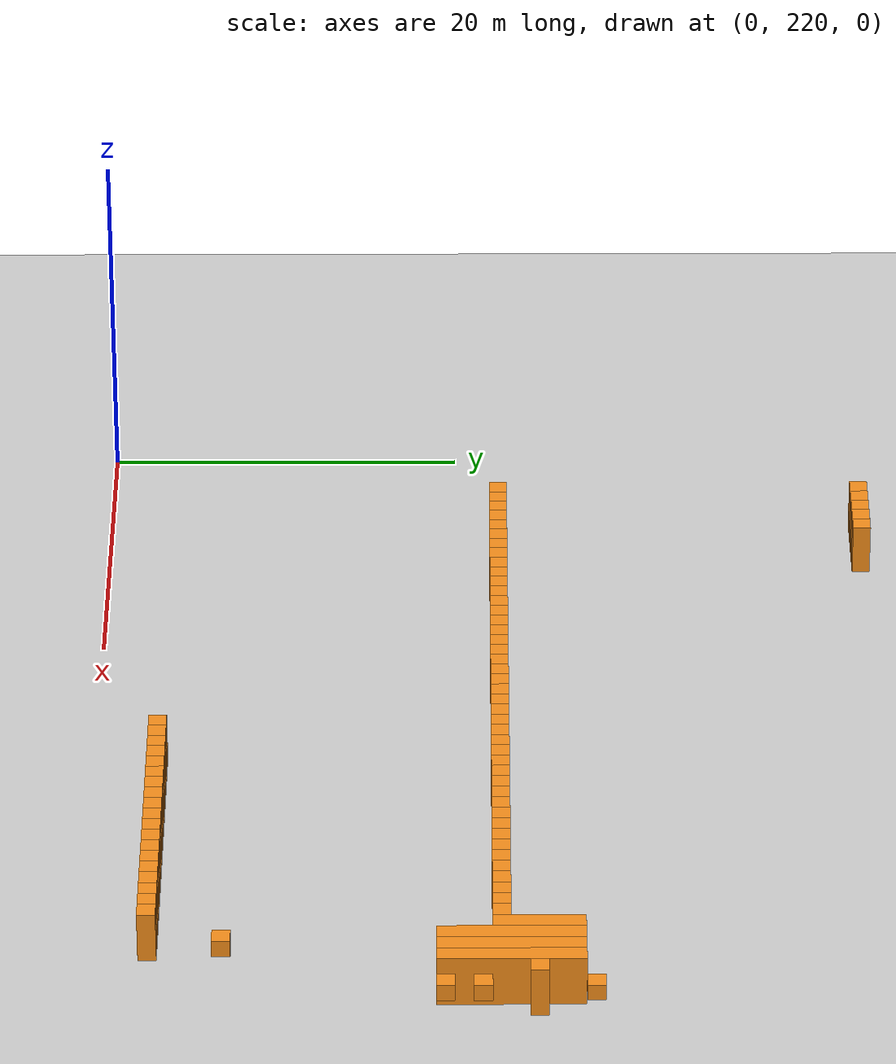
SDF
<sdf version="1.6">
 <world name="default">
  <include><uri>model://ground_plane</uri></include>
  <model name="unit_box_014">
   <pose>7.50   242.50     1.50 0 0 0</pose>
   <static>1</static>
   <link name="link">
    <inertial>
     <mass>5000</mass>
     <inertia><ixx>200</ixx><ixy>0</ixy><ixz>0</ixz><iyy>200</iyy><iyz>0</iyz><izz>200</izz></inertia>
    </inertial>
    <collision name="collision"><geometry><box><size>1 1 3</size></box></geometry></collision>
    <visual name="visual">
     <geometry><box><size>1 1 3</size></box></geometry>
     <material>
      <script><name>Gazebo/Orange</name><uri>file://media/materials/scripts/gazebo.material</uri></script>
     </material>
    </visual>
   </link>
  </model>
  <model name="unit_box_015">
   <pose>7.50   263.50     1.50 0 0 0</pose>
   <static>1</static>
   <link name="link">
    <inertial>
     <mass>5000</mass>
     <inertia><ixx>200</ixx><ixy>0</ixy><ixz>0</ixz><iyy>200</iyy><iyz>0</iyz><izz>200</izz></inertia>
    </inertial>
    <collision name="collision"><geometry><box><size>1 1 3</size></box></geometry></collision>
    <visual name="visual">
     <geometry><box><size>1 1 3</size></box></geometry>
     <material>
      <script><name>Gazebo/Orange</name><uri>file://media/materials/scripts/gazebo.material</uri></script>
     </material>
    </visual>
   </link>
  </model>
  <model name="unit_box_027">
   <pose>8.50   242.50     1.50 0 0 0</pose>
   <static>1</static>
   <link name="link">
    <inertial>
     <mass>5000</mass>
     <inertia><ixx>200</ixx><ixy>0</ixy><ixz>0</ixz><iyy>200</iyy><iyz>0</iyz><izz>200</izz></inertia>
    </inertial>
    <collision name="collision"><geometry><box><size>1 1 3</size></box></geometry></collision>
    <visual name="visual">
     <geometry><box><size>1 1 3</size></box></geometry>
     <material>
      <script><name>Gazebo/Orange</name><uri>file://media/materials/scripts/gazebo.material</uri></script>
     </material>
    </visual>
   </link>
  </model>
  <model name="unit_box_028">
   <pose>8.50   263.50     1.50 0 0 0</pose>
   <static>1</static>
   <link name="link">
    <inertial>
     <mass>5000</mass>
     <inertia><ixx>200</ixx><ixy>0</ixy><ixz>0</ixz><iyy>200</iyy><iyz>0</iyz><izz>200</izz></inertia>
    </inertial>
    <collision name="collision"><geometry><box><size>1 1 3</size></box></geometry></collision>
    <visual name="visual">
     <geometry><box><size>1 1 3</size></box></geometry>
     <material>
      <script><name>Gazebo/Orange</name><uri>file://media/materials/scripts/gazebo.material</uri></script>
     </material>
    </visual>
   </link>
  </model>
  <model name="unit_box_040">
   <pose>9.50   242.50     1.50 0 0 0</pose>
   <static>1</static>
   <link name="link">
    <inertial>
     <mass>5000</mass>
     <inertia><ixx>200</ixx><ixy>0</ixy><ixz>0</ixz><iyy>200</iyy><iyz>0</iyz><izz>200</izz></inertia>
    </inertial>
    <collision name="collision"><geometry><box><size>1 1 3</size></box></geometry></collision>
    <visual name="visual">
     <geometry><box><size>1 1 3</size></box></geometry>
     <material>
      <script><name>Gazebo/Orange</name><uri>file://media/materials/scripts/gazebo.material</uri></script>
     </material>
    </visual>
   </link>
  </model>
  <model name="unit_box_041">
   <pose>9.50   263.50     1.50 0 0 0</pose>
   <static>1</static>
   <link name="link">
    <inertial>
     <mass>5000</mass>
     <inertia><ixx>200</ixx><ixy>0</ixy><ixz>0</ixz><iyy>200</iyy><iyz>0</iyz><izz>200</izz></inertia>
    </inertial>
    <collision name="collision"><geometry><box><size>1 1 3</size></box></geometry></collision>
    <visual name="visual">
     <geometry><box><size>1 1 3</size></box></geometry>
     <material>
      <script><name>Gazebo/Orange</name><uri>file://media/materials/scripts/gazebo.material</uri></script>
     </material>
    </visual>
   </link>
  </model>
  <model name="unit_box_053">
   <pose>10.50   242.50     1.50 0 0 0</pose>
   <static>1</static>
   <link name="link">
    <inertial>
     <mass>5000</mass>
     <inertia><ixx>200</ixx><ixy>0</ixy><ixz>0</ixz><iyy>200</iyy><iyz>0</iyz><izz>200</izz></inertia>
    </inertial>
    <collision name="collision"><geometry><box><size>1 1 3</size></box></geometry></collision>
    <visual name="visual">
     <geometry><box><size>1 1 3</size></box></geometry>
     <material>
      <script><name>Gazebo/Orange</name><uri>file://media/materials/scripts/gazebo.material</uri></script>
     </material>
    </visual>
   </link>
  </model>
  <model name="unit_box_054">
   <pose>10.50   263.50     1.50 0 0 0</pose>
   <static>1</static>
   <link name="link">
    <inertial>
     <mass>5000</mass>
     <inertia><ixx>200</ixx><ixy>0</ixy><ixz>0</ixz><iyy>200</iyy><iyz>0</iyz><izz>200</izz></inertia>
    </inertial>
    <collision name="collision"><geometry><box><size>1 1 3</size></box></geometry></collision>
    <visual name="visual">
     <geometry><box><size>1 1 3</size></box></geometry>
     <material>
      <script><name>Gazebo/Orange</name><uri>file://media/materials/scripts/gazebo.material</uri></script>
     </material>
    </visual>
   </link>
  </model>
  <model name="unit_box_066">
   <pose>11.50   242.50     1.50 0 0 0</pose>
   <static>1</static>
   <link name="link">
    <inertial>
     <mass>5000</mass>
     <inertia><ixx>200</ixx><ixy>0</ixy><ixz>0</ixz><iyy>200</iyy><iyz>0</iyz><izz>200</izz></inertia>
    </inertial>
    <collision name="collision"><geometry><box><size>1 1 3</size></box></geometry></collision>
    <visual name="visual">
     <geometry><box><size>1 1 3</size></box></geometry>
     <material>
      <script><name>Gazebo/Orange</name><uri>file://media/materials/scripts/gazebo.material</uri></script>
     </material>
    </visual>
   </link>
  </model>
  <model name="unit_box_067">
   <pose>11.50   263.50     1.50 0 0 0</pose>
   <static>1</static>
   <link name="link">
    <inertial>
     <mass>5000</mass>
     <inertia><ixx>200</ixx><ixy>0</ixy><ixz>0</ixz><iyy>200</iyy><iyz>0</iyz><izz>200</izz></inertia>
    </inertial>
    <collision name="collision"><geometry><box><size>1 1 3</size></box></geometry></collision>
    <visual name="visual">
     <geometry><box><size>1 1 3</size></box></geometry>
     <material>
      <script><name>Gazebo/Orange</name><uri>file://media/materials/scripts/gazebo.material</uri></script>
     </material>
    </visual>
   </link>
  </model>
  <model name="unit_box_079">
   <pose>12.50   242.50     1.50 0 0 0</pose>
   <static>1</static>
   <link name="link">
    <inertial>
     <mass>5000</mass>
     <inertia><ixx>200</ixx><ixy>0</ixy><ixz>0</ixz><iyy>200</iyy><iyz>0</iyz><izz>200</izz></inertia>
    </inertial>
    <collision name="collision"><geometry><box><size>1 1 3</size></box></geometry></collision>
    <visual name="visual">
     <geometry><box><size>1 1 3</size></box></geometry>
     <material>
      <script><name>Gazebo/Orange</name><uri>file://media/materials/scripts/gazebo.material</uri></script>
     </material>
    </visual>
   </link>
  </model>
  <model name="unit_box_092">
   <pose>13.50   242.50     1.50 0 0 0</pose>
   <static>1</static>
   <link name="link">
    <inertial>
     <mass>5000</mass>
     <inertia><ixx>200</ixx><ixy>0</ixy><ixz>0</ixz><iyy>200</iyy><iyz>0</iyz><izz>200</izz></inertia>
    </inertial>
    <collision name="collision"><geometry><box><size>1 1 3</size></box></geometry></collision>
    <visual name="visual">
     <geometry><box><size>1 1 3</size></box></geometry>
     <material>
      <script><name>Gazebo/Orange</name><uri>file://media/materials/scripts/gazebo.material</uri></script>
     </material>
    </visual>
   </link>
  </model>
  <model name="unit_box_105">
   <pose>14.50   242.50     1.50 0 0 0</pose>
   <static>1</static>
   <link name="link">
    <inertial>
     <mass>5000</mass>
     <inertia><ixx>200</ixx><ixy>0</ixy><ixz>0</ixz><iyy>200</iyy><iyz>0</iyz><izz>200</izz></inertia>
    </inertial>
    <collision name="collision"><geometry><box><size>1 1 3</size></box></geometry></collision>
    <visual name="visual">
     <geometry><box><size>1 1 3</size></box></geometry>
     <material>
      <script><name>Gazebo/Orange</name><uri>file://media/materials/scripts/gazebo.material</uri></script>
     </material>
    </visual>
   </link>
  </model>
  <model name="unit_box_118">
   <pose>15.50   242.50     1.50 0 0 0</pose>
   <static>1</static>
   <link name="link">
    <inertial>
     <mass>5000</mass>
     <inertia><ixx>200</ixx><ixy>0</ixy><ixz>0</ixz><iyy>200</iyy><iyz>0</iyz><izz>200</izz></inertia>
    </inertial>
    <collision name="collision"><geometry><box><size>1 1 3</size></box></geometry></collision>
    <visual name="visual">
     <geometry><box><size>1 1 3</size></box></geometry>
     <material>
      <script><name>Gazebo/Orange</name><uri>file://media/materials/scripts/gazebo.material</uri></script>
     </material>
    </visual>
   </link>
  </model>
  <model name="unit_box_131">
   <pose>16.50   242.50     1.50 0 0 0</pose>
   <static>1</static>
   <link name="link">
    <inertial>
     <mass>5000</mass>
     <inertia><ixx>200</ixx><ixy>0</ixy><ixz>0</ixz><iyy>200</iyy><iyz>0</iyz><izz>200</izz></inertia>
    </inertial>
    <collision name="collision"><geometry><box><size>1 1 3</size></box></geometry></collision>
    <visual name="visual">
     <geometry><box><size>1 1 3</size></box></geometry>
     <material>
      <script><name>Gazebo/Orange</name><uri>file://media/materials/scripts/gazebo.material</uri></script>
     </material>
    </visual>
   </link>
  </model>
  <model name="unit_box_144">
   <pose>17.50   242.50     1.50 0 0 0</pose>
   <static>1</static>
   <link name="link">
    <inertial>
     <mass>5000</mass>
     <inertia><ixx>200</ixx><ixy>0</ixy><ixz>0</ixz><iyy>200</iyy><iyz>0</iyz><izz>200</izz></inertia>
    </inertial>
    <collision name="collision"><geometry><box><size>1 1 3</size></box></geometry></collision>
    <visual name="visual">
     <geometry><box><size>1 1 3</size></box></geometry>
     <material>
      <script><name>Gazebo/Orange</name><uri>file://media/materials/scripts/gazebo.material</uri></script>
     </material>
    </visual>
   </link>
  </model>
  <model name="unit_box_157">
   <pose>18.50   242.50     1.50 0 0 0</pose>
   <static>1</static>
   <link name="link">
    <inertial>
     <mass>5000</mass>
     <inertia><ixx>200</ixx><ixy>0</ixy><ixz>0</ixz><iyy>200</iyy><iyz>0</iyz><izz>200</izz></inertia>
    </inertial>
    <collision name="collision"><geometry><box><size>1 1 3</size></box></geometry></collision>
    <visual name="visual">
     <geometry><box><size>1 1 3</size></box></geometry>
     <material>
      <script><name>Gazebo/Orange</name><uri>file://media/materials/scripts/gazebo.material</uri></script>
     </material>
    </visual>
   </link>
  </model>
  <model name="unit_box_170">
   <pose>19.50   242.50     1.50 0 0 0</pose>
   <static>1</static>
   <link name="link">
    <inertial>
     <mass>5000</mass>
     <inertia><ixx>200</ixx><ixy>0</ixy><ixz>0</ixz><iyy>200</iyy><iyz>0</iyz><izz>200</izz></inertia>
    </inertial>
    <collision name="collision"><geometry><box><size>1 1 3</size></box></geometry></collision>
    <visual name="visual">
     <geometry><box><size>1 1 3</size></box></geometry>
     <material>
      <script><name>Gazebo/Orange</name><uri>file://media/materials/scripts/gazebo.material</uri></script>
     </material>
    </visual>
   </link>
  </model>
  <model name="unit_box_183">
   <pose>20.50   242.50     1.50 0 0 0</pose>
   <static>1</static>
   <link name="link">
    <inertial>
     <mass>5000</mass>
     <inertia><ixx>200</ixx><ixy>0</ixy><ixz>0</ixz><iyy>200</iyy><iyz>0</iyz><izz>200</izz></inertia>
    </inertial>
    <collision name="collision"><geometry><box><size>1 1 3</size></box></geometry></collision>
    <visual name="visual">
     <geometry><box><size>1 1 3</size></box></geometry>
     <material>
      <script><name>Gazebo/Orange</name><uri>file://media/materials/scripts/gazebo.material</uri></script>
     </material>
    </visual>
   </link>
  </model>
  <model name="unit_box_196">
   <pose>21.50   242.50     1.50 0 0 0</pose>
   <static>1</static>
   <link name="link">
    <inertial>
     <mass>5000</mass>
     <inertia><ixx>200</ixx><ixy>0</ixy><ixz>0</ixz><iyy>200</iyy><iyz>0</iyz><izz>200</izz></inertia>
    </inertial>
    <collision name="collision"><geometry><box><size>1 1 3</size></box></geometry></collision>
    <visual name="visual">
     <geometry><box><size>1 1 3</size></box></geometry>
     <material>
      <script><name>Gazebo/Orange</name><uri>file://media/materials/scripts/gazebo.material</uri></script>
     </material>
    </visual>
   </link>
  </model>
  <model name="unit_box_209">
   <pose>22.50   242.50     1.50 0 0 0</pose>
   <static>1</static>
   <link name="link">
    <inertial>
     <mass>5000</mass>
     <inertia><ixx>200</ixx><ixy>0</ixy><ixz>0</ixz><iyy>200</iyy><iyz>0</iyz><izz>200</izz></inertia>
    </inertial>
    <collision name="collision"><geometry><box><size>1 1 3</size></box></geometry></collision>
    <visual name="visual">
     <geometry><box><size>1 1 3</size></box></geometry>
     <material>
      <script><name>Gazebo/Orange</name><uri>file://media/materials/scripts/gazebo.material</uri></script>
     </material>
    </visual>
   </link>
  </model>
  <model name="unit_box_222">
   <pose>23.50   242.50     1.50 0 0 0</pose>
   <static>1</static>
   <link name="link">
    <inertial>
     <mass>5000</mass>
     <inertia><ixx>200</ixx><ixy>0</ixy><ixz>0</ixz><iyy>200</iyy><iyz>0</iyz><izz>200</izz></inertia>
    </inertial>
    <collision name="collision"><geometry><box><size>1 1 3</size></box></geometry></collision>
    <visual name="visual">
     <geometry><box><size>1 1 3</size></box></geometry>
     <material>
      <script><name>Gazebo/Orange</name><uri>file://media/materials/scripts/gazebo.material</uri></script>
     </material>
    </visual>
   </link>
  </model>
  <model name="unit_box_235">
   <pose>24.50   242.50     1.50 0 0 0</pose>
   <static>1</static>
   <link name="link">
    <inertial>
     <mass>5000</mass>
     <inertia><ixx>200</ixx><ixy>0</ixy><ixz>0</ixz><iyy>200</iyy><iyz>0</iyz><izz>200</izz></inertia>
    </inertial>
    <collision name="collision"><geometry><box><size>1 1 3</size></box></geometry></collision>
    <visual name="visual">
     <geometry><box><size>1 1 3</size></box></geometry>
     <material>
      <script><name>Gazebo/Orange</name><uri>file://media/materials/scripts/gazebo.material</uri></script>
     </material>
    </visual>
   </link>
  </model>
  <model name="unit_box_248">
   <pose>25.50   242.50     1.50 0 0 0</pose>
   <static>1</static>
   <link name="link">
    <inertial>
     <mass>5000</mass>
     <inertia><ixx>200</ixx><ixy>0</ixy><ixz>0</ixz><iyy>200</iyy><iyz>0</iyz><izz>200</izz></inertia>
    </inertial>
    <collision name="collision"><geometry><box><size>1 1 3</size></box></geometry></collision>
    <visual name="visual">
     <geometry><box><size>1 1 3</size></box></geometry>
     <material>
      <script><name>Gazebo/Orange</name><uri>file://media/materials/scripts/gazebo.material</uri></script>
     </material>
    </visual>
   </link>
  </model>
  <model name="unit_box_261">
   <pose>26.50   242.50     1.50 0 0 0</pose>
   <static>1</static>
   <link name="link">
    <inertial>
     <mass>5000</mass>
     <inertia><ixx>200</ixx><ixy>0</ixy><ixz>0</ixz><iyy>200</iyy><iyz>0</iyz><izz>200</izz></inertia>
    </inertial>
    <collision name="collision"><geometry><box><size>1 1 3</size></box></geometry></collision>
    <visual name="visual">
     <geometry><box><size>1 1 3</size></box></geometry>
     <material>
      <script><name>Gazebo/Orange</name><uri>file://media/materials/scripts/gazebo.material</uri></script>
     </material>
    </visual>
   </link>
  </model>
  <model name="unit_box_274">
   <pose>27.50   242.50     1.50 0 0 0</pose>
   <static>1</static>
   <link name="link">
    <inertial>
     <mass>5000</mass>
     <inertia><ixx>200</ixx><ixy>0</ixy><ixz>0</ixz><iyy>200</iyy><iyz>0</iyz><izz>200</izz></inertia>
    </inertial>
    <collision name="collision"><geometry><box><size>1 1 3</size></box></geometry></collision>
    <visual name="visual">
     <geometry><box><size>1 1 3</size></box></geometry>
     <material>
      <script><name>Gazebo/Orange</name><uri>file://media/materials/scripts/gazebo.material</uri></script>
     </material>
    </visual>
   </link>
  </model>
  <model name="unit_box_287">
   <pose>28.50   242.50     1.50 0 0 0</pose>
   <static>1</static>
   <link name="link">
    <inertial>
     <mass>5000</mass>
     <inertia><ixx>200</ixx><ixy>0</ixy><ixz>0</ixz><iyy>200</iyy><iyz>0</iyz><izz>200</izz></inertia>
    </inertial>
    <collision name="collision"><geometry><box><size>1 1 3</size></box></geometry></collision>
    <visual name="visual">
     <geometry><box><size>1 1 3</size></box></geometry>
     <material>
      <script><name>Gazebo/Orange</name><uri>file://media/materials/scripts/gazebo.material</uri></script>
     </material>
    </visual>
   </link>
  </model>
  <model name="unit_box_300">
   <pose>29.50   242.50     1.50 0 0 0</pose>
   <static>1</static>
   <link name="link">
    <inertial>
     <mass>5000</mass>
     <inertia><ixx>200</ixx><ixy>0</ixy><ixz>0</ixz><iyy>200</iyy><iyz>0</iyz><izz>200</izz></inertia>
    </inertial>
    <collision name="collision"><geometry><box><size>1 1 3</size></box></geometry></collision>
    <visual name="visual">
     <geometry><box><size>1 1 3</size></box></geometry>
     <material>
      <script><name>Gazebo/Orange</name><uri>file://media/materials/scripts/gazebo.material</uri></script>
     </material>
    </visual>
   </link>
  </model>
  <model name="unit_box_313">
   <pose>30.50   242.50     1.50 0 0 0</pose>
   <static>1</static>
   <link name="link">
    <inertial>
     <mass>5000</mass>
     <inertia><ixx>200</ixx><ixy>0</ixy><ixz>0</ixz><iyy>200</iyy><iyz>0</iyz><izz>200</izz></inertia>
    </inertial>
    <collision name="collision"><geometry><box><size>1 1 3</size></box></geometry></collision>
    <visual name="visual">
     <geometry><box><size>1 1 3</size></box></geometry>
     <material>
      <script><name>Gazebo/Orange</name><uri>file://media/materials/scripts/gazebo.material</uri></script>
     </material>
    </visual>
   </link>
  </model>
  <model name="unit_box_325">
   <pose>31.50   223.50     1.50 0 0 0</pose>
   <static>1</static>
   <link name="link">
    <inertial>
     <mass>5000</mass>
     <inertia><ixx>200</ixx><ixy>0</ixy><ixz>0</ixz><iyy>200</iyy><iyz>0</iyz><izz>200</izz></inertia>
    </inertial>
    <collision name="collision"><geometry><box><size>1 1 3</size></box></geometry></collision>
    <visual name="visual">
     <geometry><box><size>1 1 3</size></box></geometry>
     <material>
      <script><name>Gazebo/Orange</name><uri>file://media/materials/scripts/gazebo.material</uri></script>
     </material>
    </visual>
   </link>
  </model>
  <model name="unit_box_326">
   <pose>31.50   242.50     1.50 0 0 0</pose>
   <static>1</static>
   <link name="link">
    <inertial>
     <mass>5000</mass>
     <inertia><ixx>200</ixx><ixy>0</ixy><ixz>0</ixz><iyy>200</iyy><iyz>0</iyz><izz>200</izz></inertia>
    </inertial>
    <collision name="collision"><geometry><box><size>1 1 3</size></box></geometry></collision>
    <visual name="visual">
     <geometry><box><size>1 1 3</size></box></geometry>
     <material>
      <script><name>Gazebo/Orange</name><uri>file://media/materials/scripts/gazebo.material</uri></script>
     </material>
    </visual>
   </link>
  </model>
  <model name="unit_box_338">
   <pose>32.50   223.50     1.50 0 0 0</pose>
   <static>1</static>
   <link name="link">
    <inertial>
     <mass>5000</mass>
     <inertia><ixx>200</ixx><ixy>0</ixy><ixz>0</ixz><iyy>200</iyy><iyz>0</iyz><izz>200</izz></inertia>
    </inertial>
    <collision name="collision"><geometry><box><size>1 1 3</size></box></geometry></collision>
    <visual name="visual">
     <geometry><box><size>1 1 3</size></box></geometry>
     <material>
      <script><name>Gazebo/Orange</name><uri>file://media/materials/scripts/gazebo.material</uri></script>
     </material>
    </visual>
   </link>
  </model>
  <model name="unit_box_339">
   <pose>32.50   242.50     1.50 0 0 0</pose>
   <static>1</static>
   <link name="link">
    <inertial>
     <mass>5000</mass>
     <inertia><ixx>200</ixx><ixy>0</ixy><ixz>0</ixz><iyy>200</iyy><iyz>0</iyz><izz>200</izz></inertia>
    </inertial>
    <collision name="collision"><geometry><box><size>1 1 3</size></box></geometry></collision>
    <visual name="visual">
     <geometry><box><size>1 1 3</size></box></geometry>
     <material>
      <script><name>Gazebo/Orange</name><uri>file://media/materials/scripts/gazebo.material</uri></script>
     </material>
    </visual>
   </link>
  </model>
  <model name="unit_box_351">
   <pose>33.50   223.50     1.50 0 0 0</pose>
   <static>1</static>
   <link name="link">
    <inertial>
     <mass>5000</mass>
     <inertia><ixx>200</ixx><ixy>0</ixy><ixz>0</ixz><iyy>200</iyy><iyz>0</iyz><izz>200</izz></inertia>
    </inertial>
    <collision name="collision"><geometry><box><size>1 1 3</size></box></geometry></collision>
    <visual name="visual">
     <geometry><box><size>1 1 3</size></box></geometry>
     <material>
      <script><name>Gazebo/Orange</name><uri>file://media/materials/scripts/gazebo.material</uri></script>
     </material>
    </visual>
   </link>
  </model>
  <model name="unit_box_352">
   <pose>33.50   242.50     1.50 0 0 0</pose>
   <static>1</static>
   <link name="link">
    <inertial>
     <mass>5000</mass>
     <inertia><ixx>200</ixx><ixy>0</ixy><ixz>0</ixz><iyy>200</iyy><iyz>0</iyz><izz>200</izz></inertia>
    </inertial>
    <collision name="collision"><geometry><box><size>1 1 3</size></box></geometry></collision>
    <visual name="visual">
     <geometry><box><size>1 1 3</size></box></geometry>
     <material>
      <script><name>Gazebo/Orange</name><uri>file://media/materials/scripts/gazebo.material</uri></script>
     </material>
    </visual>
   </link>
  </model>
  <model name="unit_box_364">
   <pose>34.50   223.50     1.50 0 0 0</pose>
   <static>1</static>
   <link name="link">
    <inertial>
     <mass>5000</mass>
     <inertia><ixx>200</ixx><ixy>0</ixy><ixz>0</ixz><iyy>200</iyy><iyz>0</iyz><izz>200</izz></inertia>
    </inertial>
    <collision name="collision"><geometry><box><size>1 1 3</size></box></geometry></collision>
    <visual name="visual">
     <geometry><box><size>1 1 3</size></box></geometry>
     <material>
      <script><name>Gazebo/Orange</name><uri>file://media/materials/scripts/gazebo.material</uri></script>
     </material>
    </visual>
   </link>
  </model>
  <model name="unit_box_365">
   <pose>34.50   242.50     1.50 0 0 0</pose>
   <static>1</static>
   <link name="link">
    <inertial>
     <mass>5000</mass>
     <inertia><ixx>200</ixx><ixy>0</ixy><ixz>0</ixz><iyy>200</iyy><iyz>0</iyz><izz>200</izz></inertia>
    </inertial>
    <collision name="collision"><geometry><box><size>1 1 3</size></box></geometry></collision>
    <visual name="visual">
     <geometry><box><size>1 1 3</size></box></geometry>
     <material>
      <script><name>Gazebo/Orange</name><uri>file://media/materials/scripts/gazebo.material</uri></script>
     </material>
    </visual>
   </link>
  </model>
  <model name="unit_box_377">
   <pose>35.50   223.50     1.50 0 0 0</pose>
   <static>1</static>
   <link name="link">
    <inertial>
     <mass>5000</mass>
     <inertia><ixx>200</ixx><ixy>0</ixy><ixz>0</ixz><iyy>200</iyy><iyz>0</iyz><izz>200</izz></inertia>
    </inertial>
    <collision name="collision"><geometry><box><size>1 1 3</size></box></geometry></collision>
    <visual name="visual">
     <geometry><box><size>1 1 3</size></box></geometry>
     <material>
      <script><name>Gazebo/Orange</name><uri>file://media/materials/scripts/gazebo.material</uri></script>
     </material>
    </visual>
   </link>
  </model>
  <model name="unit_box_378">
   <pose>35.50   242.50     1.50 0 0 0</pose>
   <static>1</static>
   <link name="link">
    <inertial>
     <mass>5000</mass>
     <inertia><ixx>200</ixx><ixy>0</ixy><ixz>0</ixz><iyy>200</iyy><iyz>0</iyz><izz>200</izz></inertia>
    </inertial>
    <collision name="collision"><geometry><box><size>1 1 3</size></box></geometry></collision>
    <visual name="visual">
     <geometry><box><size>1 1 3</size></box></geometry>
     <material>
      <script><name>Gazebo/Orange</name><uri>file://media/materials/scripts/gazebo.material</uri></script>
     </material>
    </visual>
   </link>
  </model>
  <model name="unit_box_390">
   <pose>36.50   223.50     1.50 0 0 0</pose>
   <static>1</static>
   <link name="link">
    <inertial>
     <mass>5000</mass>
     <inertia><ixx>200</ixx><ixy>0</ixy><ixz>0</ixz><iyy>200</iyy><iyz>0</iyz><izz>200</izz></inertia>
    </inertial>
    <collision name="collision"><geometry><box><size>1 1 3</size></box></geometry></collision>
    <visual name="visual">
     <geometry><box><size>1 1 3</size></box></geometry>
     <material>
      <script><name>Gazebo/Orange</name><uri>file://media/materials/scripts/gazebo.material</uri></script>
     </material>
    </visual>
   </link>
  </model>
  <model name="unit_box_391">
   <pose>36.50   242.50     1.50 0 0 0</pose>
   <static>1</static>
   <link name="link">
    <inertial>
     <mass>5000</mass>
     <inertia><ixx>200</ixx><ixy>0</ixy><ixz>0</ixz><iyy>200</iyy><iyz>0</iyz><izz>200</izz></inertia>
    </inertial>
    <collision name="collision"><geometry><box><size>1 1 3</size></box></geometry></collision>
    <visual name="visual">
     <geometry><box><size>1 1 3</size></box></geometry>
     <material>
      <script><name>Gazebo/Orange</name><uri>file://media/materials/scripts/gazebo.material</uri></script>
     </material>
    </visual>
   </link>
  </model>
  <model name="unit_box_403">
   <pose>37.50   223.50     1.50 0 0 0</pose>
   <static>1</static>
   <link name="link">
    <inertial>
     <mass>5000</mass>
     <inertia><ixx>200</ixx><ixy>0</ixy><ixz>0</ixz><iyy>200</iyy><iyz>0</iyz><izz>200</izz></inertia>
    </inertial>
    <collision name="collision"><geometry><box><size>1 1 3</size></box></geometry></collision>
    <visual name="visual">
     <geometry><box><size>1 1 3</size></box></geometry>
     <material>
      <script><name>Gazebo/Orange</name><uri>file://media/materials/scripts/gazebo.material</uri></script>
     </material>
    </visual>
   </link>
  </model>
  <model name="unit_box_404">
   <pose>37.50   242.50     1.50 0 0 0</pose>
   <static>1</static>
   <link name="link">
    <inertial>
     <mass>5000</mass>
     <inertia><ixx>200</ixx><ixy>0</ixy><ixz>0</ixz><iyy>200</iyy><iyz>0</iyz><izz>200</izz></inertia>
    </inertial>
    <collision name="collision"><geometry><box><size>1 1 3</size></box></geometry></collision>
    <visual name="visual">
     <geometry><box><size>1 1 3</size></box></geometry>
     <material>
      <script><name>Gazebo/Orange</name><uri>file://media/materials/scripts/gazebo.material</uri></script>
     </material>
    </visual>
   </link>
  </model>
  <model name="unit_box_416">
   <pose>38.50   223.50     1.50 0 0 0</pose>
   <static>1</static>
   <link name="link">
    <inertial>
     <mass>5000</mass>
     <inertia><ixx>200</ixx><ixy>0</ixy><ixz>0</ixz><iyy>200</iyy><iyz>0</iyz><izz>200</izz></inertia>
    </inertial>
    <collision name="collision"><geometry><box><size>1 1 3</size></box></geometry></collision>
    <visual name="visual">
     <geometry><box><size>1 1 3</size></box></geometry>
     <material>
      <script><name>Gazebo/Orange</name><uri>file://media/materials/scripts/gazebo.material</uri></script>
     </material>
    </visual>
   </link>
  </model>
  <model name="unit_box_417">
   <pose>38.50   242.50     1.50 0 0 0</pose>
   <static>1</static>
   <link name="link">
    <inertial>
     <mass>5000</mass>
     <inertia><ixx>200</ixx><ixy>0</ixy><ixz>0</ixz><iyy>200</iyy><iyz>0</iyz><izz>200</izz></inertia>
    </inertial>
    <collision name="collision"><geometry><box><size>1 1 3</size></box></geometry></collision>
    <visual name="visual">
     <geometry><box><size>1 1 3</size></box></geometry>
     <material>
      <script><name>Gazebo/Orange</name><uri>file://media/materials/scripts/gazebo.material</uri></script>
     </material>
    </visual>
   </link>
  </model>
  <model name="unit_box_429">
   <pose>39.50   223.50     1.50 0 0 0</pose>
   <static>1</static>
   <link name="link">
    <inertial>
     <mass>5000</mass>
     <inertia><ixx>200</ixx><ixy>0</ixy><ixz>0</ixz><iyy>200</iyy><iyz>0</iyz><izz>200</izz></inertia>
    </inertial>
    <collision name="collision"><geometry><box><size>1 1 3</size></box></geometry></collision>
    <visual name="visual">
     <geometry><box><size>1 1 3</size></box></geometry>
     <material>
      <script><name>Gazebo/Orange</name><uri>file://media/materials/scripts/gazebo.material</uri></script>
     </material>
    </visual>
   </link>
  </model>
  <model name="unit_box_430">
   <pose>39.50   242.50     1.50 0 0 0</pose>
   <static>1</static>
   <link name="link">
    <inertial>
     <mass>5000</mass>
     <inertia><ixx>200</ixx><ixy>0</ixy><ixz>0</ixz><iyy>200</iyy><iyz>0</iyz><izz>200</izz></inertia>
    </inertial>
    <collision name="collision"><geometry><box><size>1 1 3</size></box></geometry></collision>
    <visual name="visual">
     <geometry><box><size>1 1 3</size></box></geometry>
     <material>
      <script><name>Gazebo/Orange</name><uri>file://media/materials/scripts/gazebo.material</uri></script>
     </material>
    </visual>
   </link>
  </model>
  <model name="unit_box_442">
   <pose>40.50   223.50     1.50 0 0 0</pose>
   <static>1</static>
   <link name="link">
    <inertial>
     <mass>5000</mass>
     <inertia><ixx>200</ixx><ixy>0</ixy><ixz>0</ixz><iyy>200</iyy><iyz>0</iyz><izz>200</izz></inertia>
    </inertial>
    <collision name="collision"><geometry><box><size>1 1 3</size></box></geometry></collision>
    <visual name="visual">
     <geometry><box><size>1 1 3</size></box></geometry>
     <material>
      <script><name>Gazebo/Orange</name><uri>file://media/materials/scripts/gazebo.material</uri></script>
     </material>
    </visual>
   </link>
  </model>
  <model name="unit_box_443">
   <pose>40.50   242.50     1.50 0 0 0</pose>
   <static>1</static>
   <link name="link">
    <inertial>
     <mass>5000</mass>
     <inertia><ixx>200</ixx><ixy>0</ixy><ixz>0</ixz><iyy>200</iyy><iyz>0</iyz><izz>200</izz></inertia>
    </inertial>
    <collision name="collision"><geometry><box><size>1 1 3</size></box></geometry></collision>
    <visual name="visual">
     <geometry><box><size>1 1 3</size></box></geometry>
     <material>
      <script><name>Gazebo/Orange</name><uri>file://media/materials/scripts/gazebo.material</uri></script>
     </material>
    </visual>
   </link>
  </model>
  <model name="unit_box_455">
   <pose>41.50   223.50     1.50 0 0 0</pose>
   <static>1</static>
   <link name="link">
    <inertial>
     <mass>5000</mass>
     <inertia><ixx>200</ixx><ixy>0</ixy><ixz>0</ixz><iyy>200</iyy><iyz>0</iyz><izz>200</izz></inertia>
    </inertial>
    <collision name="collision"><geometry><box><size>1 1 3</size></box></geometry></collision>
    <visual name="visual">
     <geometry><box><size>1 1 3</size></box></geometry>
     <material>
      <script><name>Gazebo/Orange</name><uri>file://media/materials/scripts/gazebo.material</uri></script>
     </material>
    </visual>
   </link>
  </model>
  <model name="unit_box_456">
   <pose>41.50   242.50     1.50 0 0 0</pose>
   <static>1</static>
   <link name="link">
    <inertial>
     <mass>5000</mass>
     <inertia><ixx>200</ixx><ixy>0</ixy><ixz>0</ixz><iyy>200</iyy><iyz>0</iyz><izz>200</izz></inertia>
    </inertial>
    <collision name="collision"><geometry><box><size>1 1 3</size></box></geometry></collision>
    <visual name="visual">
     <geometry><box><size>1 1 3</size></box></geometry>
     <material>
      <script><name>Gazebo/Orange</name><uri>file://media/materials/scripts/gazebo.material</uri></script>
     </material>
    </visual>
   </link>
  </model>
  <model name="unit_box_468">
   <pose>42.50   223.50     1.50 0 0 0</pose>
   <static>1</static>
   <link name="link">
    <inertial>
     <mass>5000</mass>
     <inertia><ixx>200</ixx><ixy>0</ixy><ixz>0</ixz><iyy>200</iyy><iyz>0</iyz><izz>200</izz></inertia>
    </inertial>
    <collision name="collision"><geometry><box><size>1 1 3</size></box></geometry></collision>
    <visual name="visual">
     <geometry><box><size>1 1 3</size></box></geometry>
     <material>
      <script><name>Gazebo/Orange</name><uri>file://media/materials/scripts/gazebo.material</uri></script>
     </material>
    </visual>
   </link>
  </model>
  <model name="unit_box_469">
   <pose>42.50   242.50     1.50 0 0 0</pose>
   <static>1</static>
   <link name="link">
    <inertial>
     <mass>5000</mass>
     <inertia><ixx>200</ixx><ixy>0</ixy><ixz>0</ixz><iyy>200</iyy><iyz>0</iyz><izz>200</izz></inertia>
    </inertial>
    <collision name="collision"><geometry><box><size>1 1 3</size></box></geometry></collision>
    <visual name="visual">
     <geometry><box><size>1 1 3</size></box></geometry>
     <material>
      <script><name>Gazebo/Orange</name><uri>file://media/materials/scripts/gazebo.material</uri></script>
     </material>
    </visual>
   </link>
  </model>
  <model name="unit_box_481">
   <pose>43.50   223.50     1.50 0 0 0</pose>
   <static>1</static>
   <link name="link">
    <inertial>
     <mass>5000</mass>
     <inertia><ixx>200</ixx><ixy>0</ixy><ixz>0</ixz><iyy>200</iyy><iyz>0</iyz><izz>200</izz></inertia>
    </inertial>
    <collision name="collision"><geometry><box><size>1 1 3</size></box></geometry></collision>
    <visual name="visual">
     <geometry><box><size>1 1 3</size></box></geometry>
     <material>
      <script><name>Gazebo/Orange</name><uri>file://media/materials/scripts/gazebo.material</uri></script>
     </material>
    </visual>
   </link>
  </model>
  <model name="unit_box_482">
   <pose>43.50   242.50     1.50 0 0 0</pose>
   <static>1</static>
   <link name="link">
    <inertial>
     <mass>5000</mass>
     <inertia><ixx>200</ixx><ixy>0</ixy><ixz>0</ixz><iyy>200</iyy><iyz>0</iyz><izz>200</izz></inertia>
    </inertial>
    <collision name="collision"><geometry><box><size>1 1 3</size></box></geometry></collision>
    <visual name="visual">
     <geometry><box><size>1 1 3</size></box></geometry>
     <material>
      <script><name>Gazebo/Orange</name><uri>file://media/materials/scripts/gazebo.material</uri></script>
     </material>
    </visual>
   </link>
  </model>
  <model name="unit_box_494">
   <pose>44.50   223.50     1.50 0 0 0</pose>
   <static>1</static>
   <link name="link">
    <inertial>
     <mass>5000</mass>
     <inertia><ixx>200</ixx><ixy>0</ixy><ixz>0</ixz><iyy>200</iyy><iyz>0</iyz><izz>200</izz></inertia>
    </inertial>
    <collision name="collision"><geometry><box><size>1 1 3</size></box></geometry></collision>
    <visual name="visual">
     <geometry><box><size>1 1 3</size></box></geometry>
     <material>
      <script><name>Gazebo/Orange</name><uri>file://media/materials/scripts/gazebo.material</uri></script>
     </material>
    </visual>
   </link>
  </model>
  <model name="unit_box_495">
   <pose>44.50   242.50     1.50 0 0 0</pose>
   <static>1</static>
   <link name="link">
    <inertial>
     <mass>5000</mass>
     <inertia><ixx>200</ixx><ixy>0</ixy><ixz>0</ixz><iyy>200</iyy><iyz>0</iyz><izz>200</izz></inertia>
    </inertial>
    <collision name="collision"><geometry><box><size>1 1 3</size></box></geometry></collision>
    <visual name="visual">
     <geometry><box><size>1 1 3</size></box></geometry>
     <material>
      <script><name>Gazebo/Orange</name><uri>file://media/materials/scripts/gazebo.material</uri></script>
     </material>
    </visual>
   </link>
  </model>
  <model name="unit_box_507">
   <pose>45.50   223.50     1.50 0 0 0</pose>
   <static>1</static>
   <link name="link">
    <inertial>
     <mass>5000</mass>
     <inertia><ixx>200</ixx><ixy>0</ixy><ixz>0</ixz><iyy>200</iyy><iyz>0</iyz><izz>200</izz></inertia>
    </inertial>
    <collision name="collision"><geometry><box><size>1 1 3</size></box></geometry></collision>
    <visual name="visual">
     <geometry><box><size>1 1 3</size></box></geometry>
     <material>
      <script><name>Gazebo/Orange</name><uri>file://media/materials/scripts/gazebo.material</uri></script>
     </material>
    </visual>
   </link>
  </model>
  <model name="unit_box_508">
   <pose>45.50   242.50     1.50 0 0 0</pose>
   <static>1</static>
   <link name="link">
    <inertial>
     <mass>5000</mass>
     <inertia><ixx>200</ixx><ixy>0</ixy><ixz>0</ixz><iyy>200</iyy><iyz>0</iyz><izz>200</izz></inertia>
    </inertial>
    <collision name="collision"><geometry><box><size>1 1 3</size></box></geometry></collision>
    <visual name="visual">
     <geometry><box><size>1 1 3</size></box></geometry>
     <material>
      <script><name>Gazebo/Orange</name><uri>file://media/materials/scripts/gazebo.material</uri></script>
     </material>
    </visual>
   </link>
  </model>
  <model name="unit_box_520">
   <pose>46.50   223.50     1.50 0 0 0</pose>
   <static>1</static>
   <link name="link">
    <inertial>
     <mass>5000</mass>
     <inertia><ixx>200</ixx><ixy>0</ixy><ixz>0</ixz><iyy>200</iyy><iyz>0</iyz><izz>200</izz></inertia>
    </inertial>
    <collision name="collision"><geometry><box><size>1 1 3</size></box></geometry></collision>
    <visual name="visual">
     <geometry><box><size>1 1 3</size></box></geometry>
     <material>
      <script><name>Gazebo/Orange</name><uri>file://media/materials/scripts/gazebo.material</uri></script>
     </material>
    </visual>
   </link>
  </model>
  <model name="unit_box_521">
   <pose>46.50   242.50     1.50 0 0 0</pose>
   <static>1</static>
   <link name="link">
    <inertial>
     <mass>5000</mass>
     <inertia><ixx>200</ixx><ixy>0</ixy><ixz>0</ixz><iyy>200</iyy><iyz>0</iyz><izz>200</izz></inertia>
    </inertial>
    <collision name="collision"><geometry><box><size>1 1 3</size></box></geometry></collision>
    <visual name="visual">
     <geometry><box><size>1 1 3</size></box></geometry>
     <material>
      <script><name>Gazebo/Orange</name><uri>file://media/materials/scripts/gazebo.material</uri></script>
     </material>
    </visual>
   </link>
  </model>
  <model name="unit_box_533">
   <pose>47.50   223.50     1.50 0 0 0</pose>
   <static>1</static>
   <link name="link">
    <inertial>
     <mass>5000</mass>
     <inertia><ixx>200</ixx><ixy>0</ixy><ixz>0</ixz><iyy>200</iyy><iyz>0</iyz><izz>200</izz></inertia>
    </inertial>
    <collision name="collision"><geometry><box><size>1 1 3</size></box></geometry></collision>
    <visual name="visual">
     <geometry><box><size>1 1 3</size></box></geometry>
     <material>
      <script><name>Gazebo/Orange</name><uri>file://media/materials/scripts/gazebo.material</uri></script>
     </material>
    </visual>
   </link>
  </model>
  <model name="unit_box_534">
   <pose>47.50   242.50     1.50 0 0 0</pose>
   <static>1</static>
   <link name="link">
    <inertial>
     <mass>5000</mass>
     <inertia><ixx>200</ixx><ixy>0</ixy><ixz>0</ixz><iyy>200</iyy><iyz>0</iyz><izz>200</izz></inertia>
    </inertial>
    <collision name="collision"><geometry><box><size>1 1 3</size></box></geometry></collision>
    <visual name="visual">
     <geometry><box><size>1 1 3</size></box></geometry>
     <material>
      <script><name>Gazebo/Orange</name><uri>file://media/materials/scripts/gazebo.material</uri></script>
     </material>
    </visual>
   </link>
  </model>
  <model name="unit_box_546">
   <pose>48.50   223.50     1.50 0 0 0</pose>
   <static>1</static>
   <link name="link">
    <inertial>
     <mass>5000</mass>
     <inertia><ixx>200</ixx><ixy>0</ixy><ixz>0</ixz><iyy>200</iyy><iyz>0</iyz><izz>200</izz></inertia>
    </inertial>
    <collision name="collision"><geometry><box><size>1 1 3</size></box></geometry></collision>
    <visual name="visual">
     <geometry><box><size>1 1 3</size></box></geometry>
     <material>
      <script><name>Gazebo/Orange</name><uri>file://media/materials/scripts/gazebo.material</uri></script>
     </material>
    </visual>
   </link>
  </model>
  <model name="unit_box_547">
   <pose>48.50   242.50     1.50 0 0 0</pose>
   <static>1</static>
   <link name="link">
    <inertial>
     <mass>5000</mass>
     <inertia><ixx>200</ixx><ixy>0</ixy><ixz>0</ixz><iyy>200</iyy><iyz>0</iyz><izz>200</izz></inertia>
    </inertial>
    <collision name="collision"><geometry><box><size>1 1 3</size></box></geometry></collision>
    <visual name="visual">
     <geometry><box><size>1 1 3</size></box></geometry>
     <material>
      <script><name>Gazebo/Orange</name><uri>file://media/materials/scripts/gazebo.material</uri></script>
     </material>
    </visual>
   </link>
  </model>
  <model name="unit_box_559">
   <pose>49.50   223.50     1.50 0 0 0</pose>
   <static>1</static>
   <link name="link">
    <inertial>
     <mass>5000</mass>
     <inertia><ixx>200</ixx><ixy>0</ixy><ixz>0</ixz><iyy>200</iyy><iyz>0</iyz><izz>200</izz></inertia>
    </inertial>
    <collision name="collision"><geometry><box><size>1 1 3</size></box></geometry></collision>
    <visual name="visual">
     <geometry><box><size>1 1 3</size></box></geometry>
     <material>
      <script><name>Gazebo/Orange</name><uri>file://media/materials/scripts/gazebo.material</uri></script>
     </material>
    </visual>
   </link>
  </model>
  <model name="unit_box_560">
   <pose>49.50   242.50     1.50 0 0 0</pose>
   <static>1</static>
   <link name="link">
    <inertial>
     <mass>5000</mass>
     <inertia><ixx>200</ixx><ixy>0</ixy><ixz>0</ixz><iyy>200</iyy><iyz>0</iyz><izz>200</izz></inertia>
    </inertial>
    <collision name="collision"><geometry><box><size>1 1 3</size></box></geometry></collision>
    <visual name="visual">
     <geometry><box><size>1 1 3</size></box></geometry>
     <material>
      <script><name>Gazebo/Orange</name><uri>file://media/materials/scripts/gazebo.material</uri></script>
     </material>
    </visual>
   </link>
  </model>
  <model name="unit_box_574">
   <pose>50.50   227.50     1.50 0 0 0</pose>
   <static>1</static>
   <link name="link">
    <inertial>
     <mass>5000</mass>
     <inertia><ixx>200</ixx><ixy>0</ixy><ixz>0</ixz><iyy>200</iyy><iyz>0</iyz><izz>200</izz></inertia>
    </inertial>
    <collision name="collision"><geometry><box><size>1 1 1</size></box></geometry></collision>
    <visual name="visual">
     <geometry><box><size>1 1 1</size></box></geometry>
     <material>
      <script><name>Gazebo/Orange</name><uri>file://media/materials/scripts/gazebo.material</uri></script>
     </material>
    </visual>
   </link>
  </model>
  <model name="unit_box_575">
   <pose>50.50   239.50     1.50 0 0 0</pose>
   <static>1</static>
   <link name="link">
    <inertial>
     <mass>5000</mass>
     <inertia><ixx>200</ixx><ixy>0</ixy><ixz>0</ixz><iyy>200</iyy><iyz>0</iyz><izz>200</izz></inertia>
    </inertial>
    <collision name="collision"><geometry><box><size>1 1 1</size></box></geometry></collision>
    <visual name="visual">
     <geometry><box><size>1 1 1</size></box></geometry>
     <material>
      <script><name>Gazebo/Orange</name><uri>file://media/materials/scripts/gazebo.material</uri></script>
     </material>
    </visual>
   </link>
  </model>
  <model name="unit_box_576">
   <pose>50.50   244.50     1.50 0 0 0</pose>
   <static>1</static>
   <link name="link">
    <inertial>
     <mass>5000</mass>
     <inertia><ixx>200</ixx><ixy>0</ixy><ixz>0</ixz><iyy>200</iyy><iyz>0</iyz><izz>200</izz></inertia>
    </inertial>
    <collision name="collision"><geometry><box><size>1 5 3</size></box></geometry></collision>
    <visual name="visual">
     <geometry><box><size>1 5 3</size></box></geometry>
     <material>
      <script><name>Gazebo/Orange</name><uri>file://media/materials/scripts/gazebo.material</uri></script>
     </material>
    </visual>
   </link>
  </model>
  <model name="unit_box_589">
   <pose>51.50   243.00     1.50 0 0 0</pose>
   <static>1</static>
   <link name="link">
    <inertial>
     <mass>5000</mass>
     <inertia><ixx>200</ixx><ixy>0</ixy><ixz>0</ixz><iyy>200</iyy><iyz>0</iyz><izz>200</izz></inertia>
    </inertial>
    <collision name="collision"><geometry><box><size>1 8 3</size></box></geometry></collision>
    <visual name="visual">
     <geometry><box><size>1 8 3</size></box></geometry>
     <material>
      <script><name>Gazebo/Orange</name><uri>file://media/materials/scripts/gazebo.material</uri></script>
     </material>
    </visual>
   </link>
  </model>
  <model name="unit_box_603">
   <pose>52.50   243.00     1.50 0 0 0</pose>
   <static>1</static>
   <link name="link">
    <inertial>
     <mass>5000</mass>
     <inertia><ixx>200</ixx><ixy>0</ixy><ixz>0</ixz><iyy>200</iyy><iyz>0</iyz><izz>200</izz></inertia>
    </inertial>
    <collision name="collision"><geometry><box><size>1 8 3</size></box></geometry></collision>
    <visual name="visual">
     <geometry><box><size>1 8 3</size></box></geometry>
     <material>
      <script><name>Gazebo/Orange</name><uri>file://media/materials/scripts/gazebo.material</uri></script>
     </material>
    </visual>
   </link>
  </model>
  <model name="unit_box_617">
   <pose>53.50   243.00     1.50 0 0 0</pose>
   <static>1</static>
   <link name="link">
    <inertial>
     <mass>5000</mass>
     <inertia><ixx>200</ixx><ixy>0</ixy><ixz>0</ixz><iyy>200</iyy><iyz>0</iyz><izz>200</izz></inertia>
    </inertial>
    <collision name="collision"><geometry><box><size>1 8 3</size></box></geometry></collision>
    <visual name="visual">
     <geometry><box><size>1 8 3</size></box></geometry>
     <material>
      <script><name>Gazebo/Orange</name><uri>file://media/materials/scripts/gazebo.material</uri></script>
     </material>
    </visual>
   </link>
  </model>
  <model name="unit_box_638">
   <pose>54.50   239.50     1.50 0 0 0</pose>
   <static>1</static>
   <link name="link">
    <inertial>
     <mass>5000</mass>
     <inertia><ixx>200</ixx><ixy>0</ixy><ixz>0</ixz><iyy>200</iyy><iyz>0</iyz><izz>200</izz></inertia>
    </inertial>
    <collision name="collision"><geometry><box><size>1 1 1</size></box></geometry></collision>
    <visual name="visual">
     <geometry><box><size>1 1 1</size></box></geometry>
     <material>
      <script><name>Gazebo/Orange</name><uri>file://media/materials/scripts/gazebo.material</uri></script>
     </material>
    </visual>
   </link>
  </model>
  <model name="unit_box_639">
   <pose>54.50   241.50     1.50 0 0 0</pose>
   <static>1</static>
   <link name="link">
    <inertial>
     <mass>5000</mass>
     <inertia><ixx>200</ixx><ixy>0</ixy><ixz>0</ixz><iyy>200</iyy><iyz>0</iyz><izz>200</izz></inertia>
    </inertial>
    <collision name="collision"><geometry><box><size>1 1 1</size></box></geometry></collision>
    <visual name="visual">
     <geometry><box><size>1 1 1</size></box></geometry>
     <material>
      <script><name>Gazebo/Orange</name><uri>file://media/materials/scripts/gazebo.material</uri></script>
     </material>
    </visual>
   </link>
  </model>
  <model name="unit_box_640">
   <pose>54.50   244.50     1.50 0 0 0</pose>
   <static>1</static>
   <link name="link">
    <inertial>
     <mass>5000</mass>
     <inertia><ixx>200</ixx><ixy>0</ixy><ixz>0</ixz><iyy>200</iyy><iyz>0</iyz><izz>200</izz></inertia>
    </inertial>
    <collision name="collision"><geometry><box><size>1 1 3</size></box></geometry></collision>
    <visual name="visual">
     <geometry><box><size>1 1 3</size></box></geometry>
     <material>
      <script><name>Gazebo/Orange</name><uri>file://media/materials/scripts/gazebo.material</uri></script>
     </material>
    </visual>
   </link>
  </model>
  <model name="unit_box_641">
   <pose>54.50   247.50     1.50 0 0 0</pose>
   <static>1</static>
   <link name="link">
    <inertial>
     <mass>5000</mass>
     <inertia><ixx>200</ixx><ixy>0</ixy><ixz>0</ixz><iyy>200</iyy><iyz>0</iyz><izz>200</izz></inertia>
    </inertial>
    <collision name="collision"><geometry><box><size>1 1 1</size></box></geometry></collision>
    <visual name="visual">
     <geometry><box><size>1 1 1</size></box></geometry>
     <material>
      <script><name>Gazebo/Orange</name><uri>file://media/materials/scripts/gazebo.material</uri></script>
     </material>
    </visual>
   </link>
  </model>
 </world>
</sdf>
